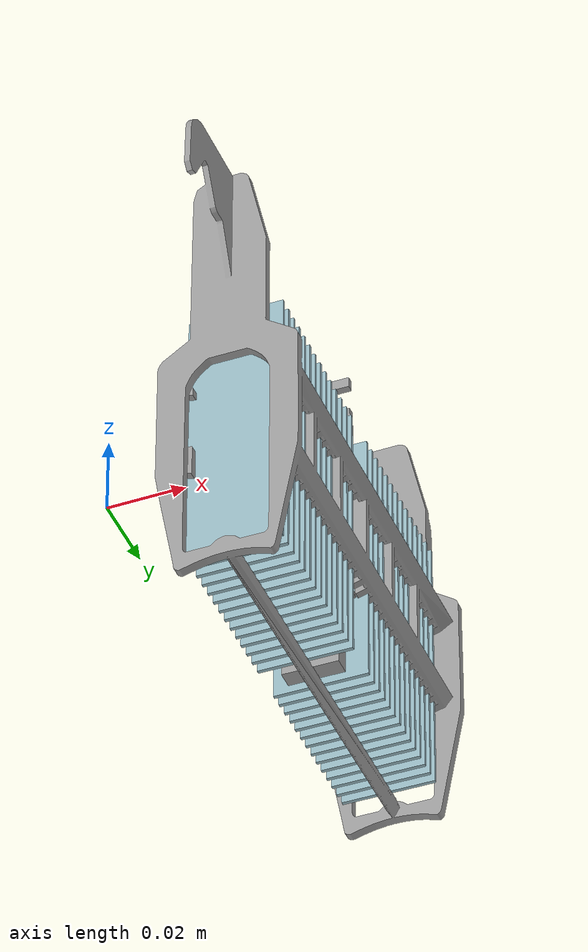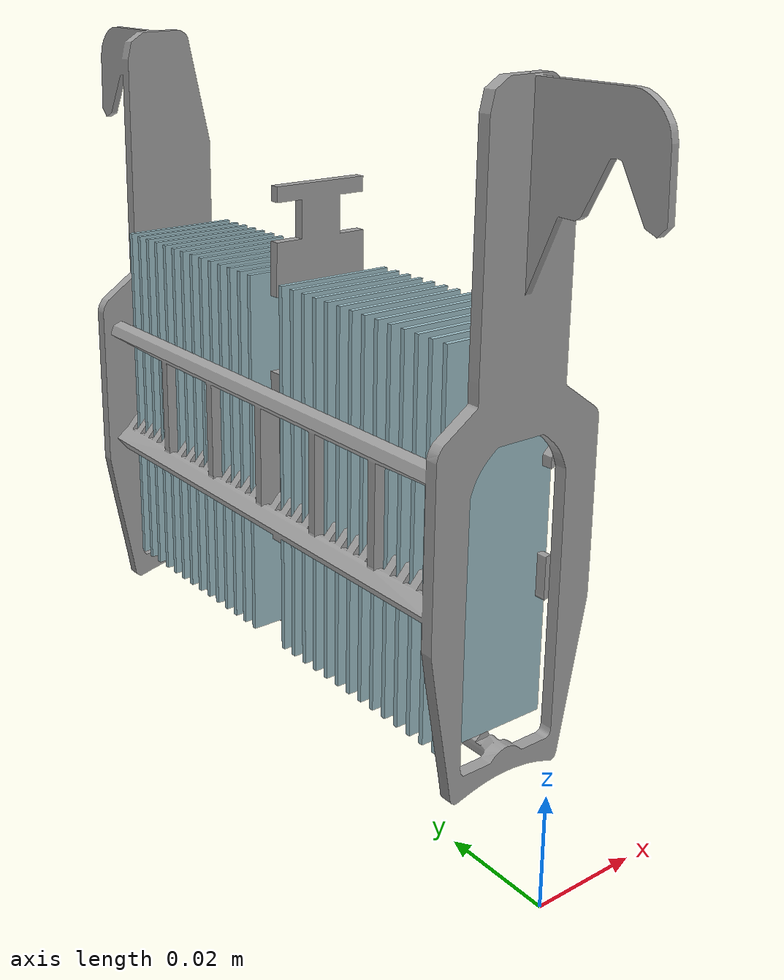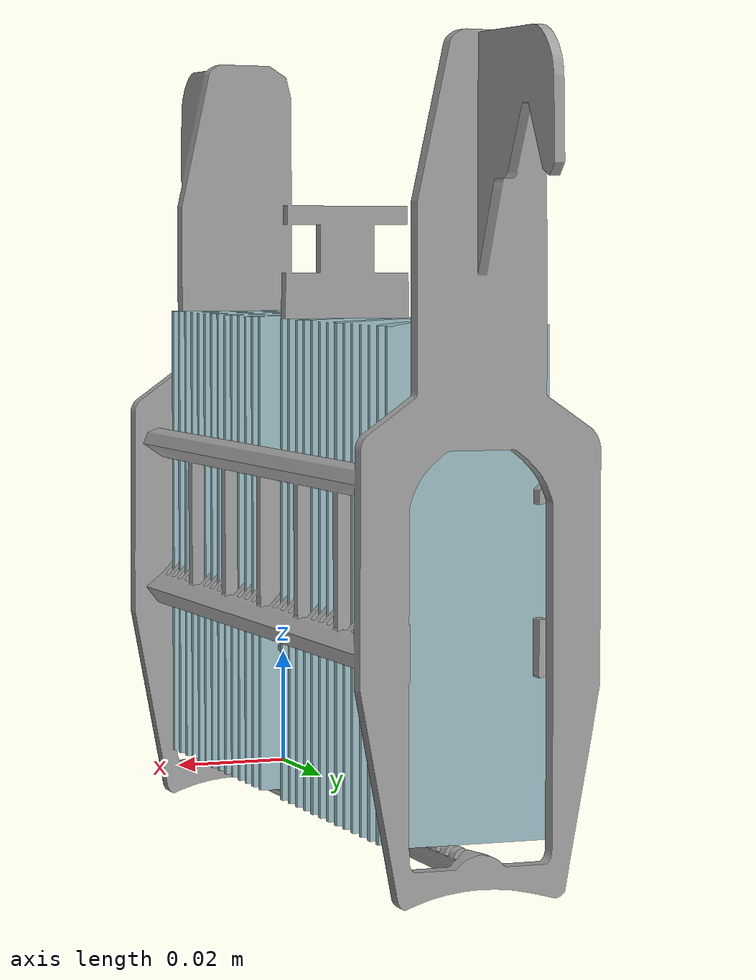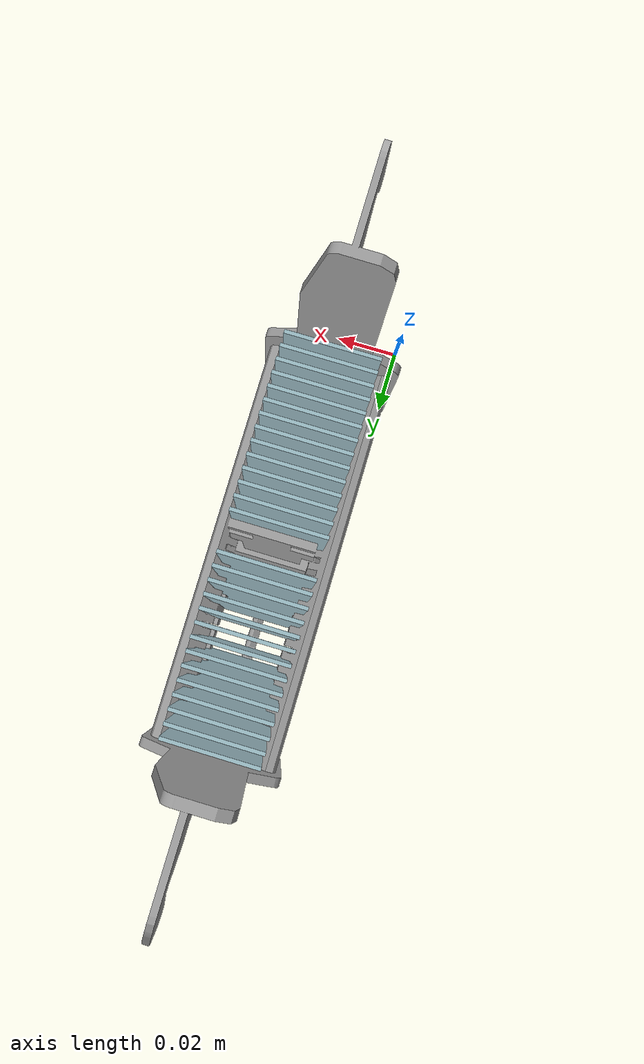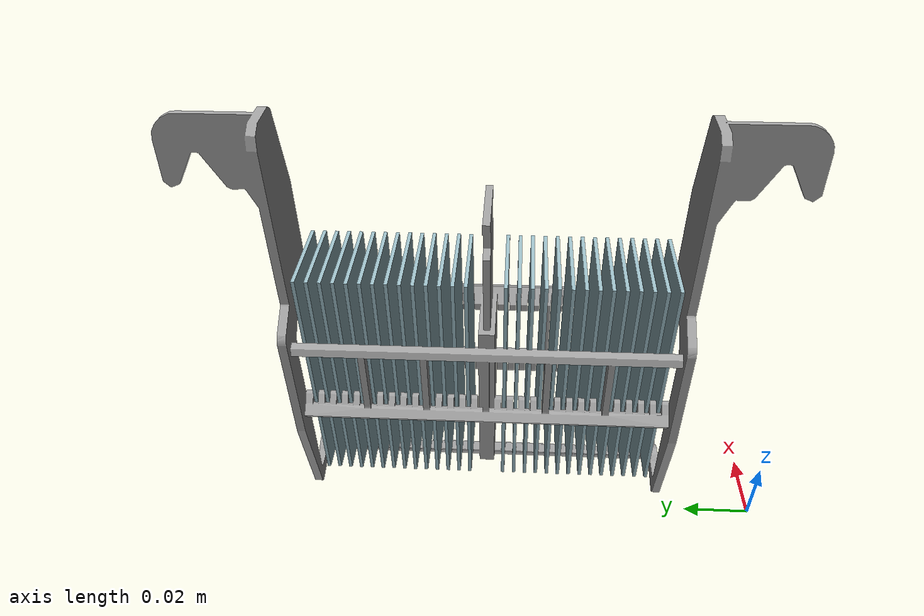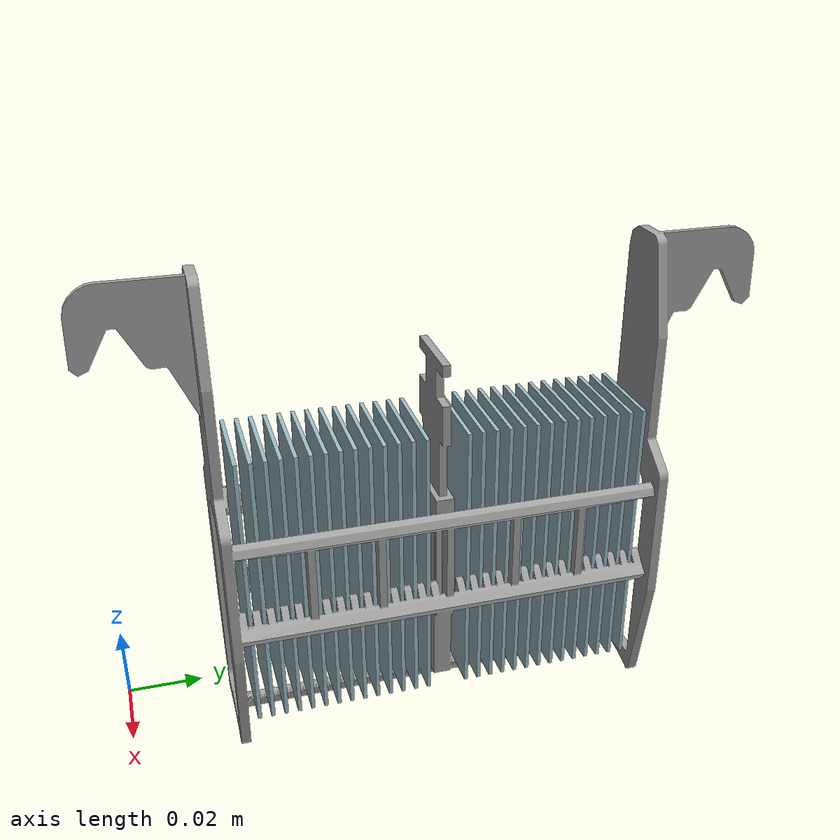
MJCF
<?xml version='1.0' encoding='utf-8'?>
<mujoco model="Handled Leica input rack | static asset inspection">
  <compiler angle="radian" />
  <visual>
    <global offwidth="1000" offheight="600" />
    <headlight ambient=".4 .4 .4" diffuse=".6 .6 .6" />
  </visual>
  <asset>
    <texture type="skybox" builtin="gradient" rgb1=".92 .95 .97" rgb2=".70 .78 .84" width="512" height="3072" />
    <mesh name="leica_rack_handled_0" file="meshes/leica_rack_handled_0.obj" inertia="shell" />
    <mesh name="leica_rack_handled_1" file="meshes/leica_rack_handled_1.obj" inertia="shell" />
  </asset>
  <worldbody>
    <geom type="mesh" mesh="leica_rack_handled_0" rgba="0.62745098 0.62745098 0.62745098 1" contype="0" conaffinity="0" density="0" />
    <geom type="mesh" mesh="leica_rack_handled_1" rgba="0.603921569 0.733333333 0.768627451 1" contype="0" conaffinity="0" density="0" />
  </worldbody>
</mujoco>
